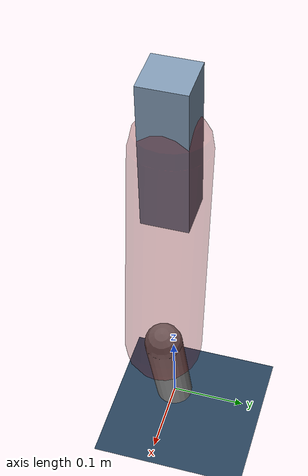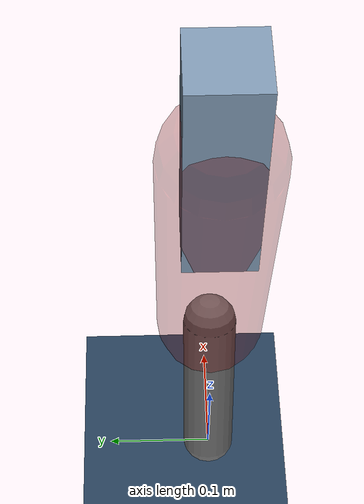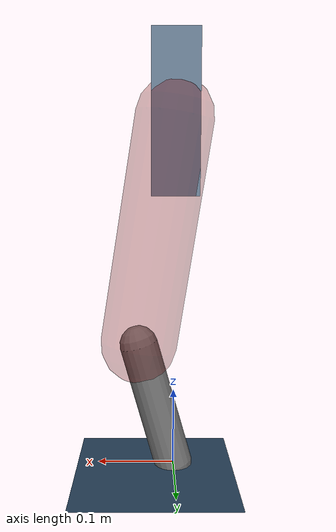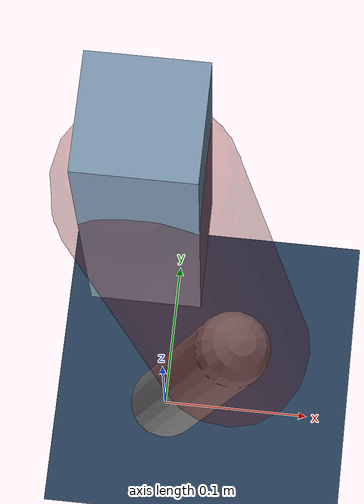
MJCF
<mujoco model="Hopper2D">
	<compiler inertiafromgeom="true" angle="radian" />
	<option timestep="0.001" integrator="implicit" cone="elliptic" solver="Newton" tolerance="1e-10" />

	<default>
		<geom contype="1" conaffinity="1" condim="3" friction="2 0.005 0.0001" solref="0.005 1" />
		<joint limited="true" damping="0.1" />
	</default>

	<asset>
		<texture name="skybox" type="skybox" builtin="gradient" rgb1=".4 .6 .8" rgb2="0 0 0" width="800" height="800" />
		<texture name="grid" type="2d" builtin="checker" rgb1=".1 .2 .3" rgb2=".2 .3 .4" width="300" height="300" mark="edge" markrgb=".2 .3 .4" />
		<material name="ground" texture="grid" texrepeat="1 1" texuniform="true" reflectance="0.1" />
		<material name="leg" rgba="0.5 0.6 0.7 1" />
	</asset>

	<worldbody>

		<geom name="floor" type="plane" size="5 5 0.25" material="ground" />

		<light directional="false" diffuse="0.8 0.8 0.8" specular="0.3 0.3 0.3" pos="0 0 2" dir="0 0 -1" />
		<light mode="targetbodycom" target="base" directional="false" diffuse="0.8 0.8 0.8" specular="0.3 0.3 0.3" pos="0 0 2" dir="0 0 -1" />

		<camera name="fixed" pos="0 -2 1" xyaxes="1 0 0 0 0 1" />
		<camera name="tracking" mode="trackcom" pos="0 -3 1" />

		<body name="root" pos="0 0 0.456069314084031">
			<joint name="slide_x" type="slide" axis="1 0 0" range="-100 100" />
			<joint name="slide_z" type="slide" axis="0 0 1" range="0 10" />

			<body name="base" pos="0 0 0">
				<geom name="torso" type="box" size="0.03 0.03 0.1" mass="5.112" material="leg" />

				<body name="link1" pos="0 0 0" euler="0 1.4154146469943956 0">
					<joint type="hinge" axis="0 -1 0" pos="0 0 0" name="hinge1" limited="true" range="-3.14 3.14" stiffness="0" damping="0.1" />
					<geom name="thigh" type="capsule" fromto="0 0 0 0.29757006462157554 0 0" size="0.05" rgba="0.5 0 0 0.3" mass="0.9821391744782539" />

					<body name="link2" pos="0.29757006462157554 0 0" euler="0 0.4322052760751219 0">
						<joint type="hinge" axis="0 -1 0" pos="0 0 0" name="hinge2" limited="true" range="-3.14 3.14" stiffness="0" damping="0.1" />
						<geom name="shank" type="capsule" fromto="0 0 0 0.16849924946245548 0 0" size="0.025" mass="0.37394932451620994" />

					</body>
				</body>
			</body>
		</body>
	</worldbody>

	<actuator>
		<motor name="torque1" joint="hinge1" ctrlrange="-260.06234164529883 260.06234164529883" ctrllimited="true" gear="1" />
		<motor name="torque2" joint="hinge2" ctrlrange="-173.79716607786952 173.79716607786952" ctrllimited="true" gear="1" />
	</actuator>
</mujoco>
